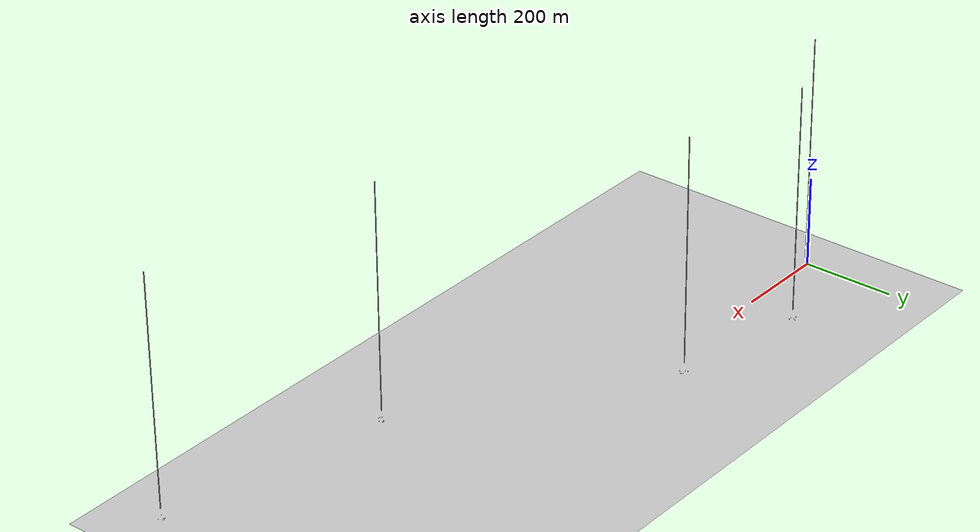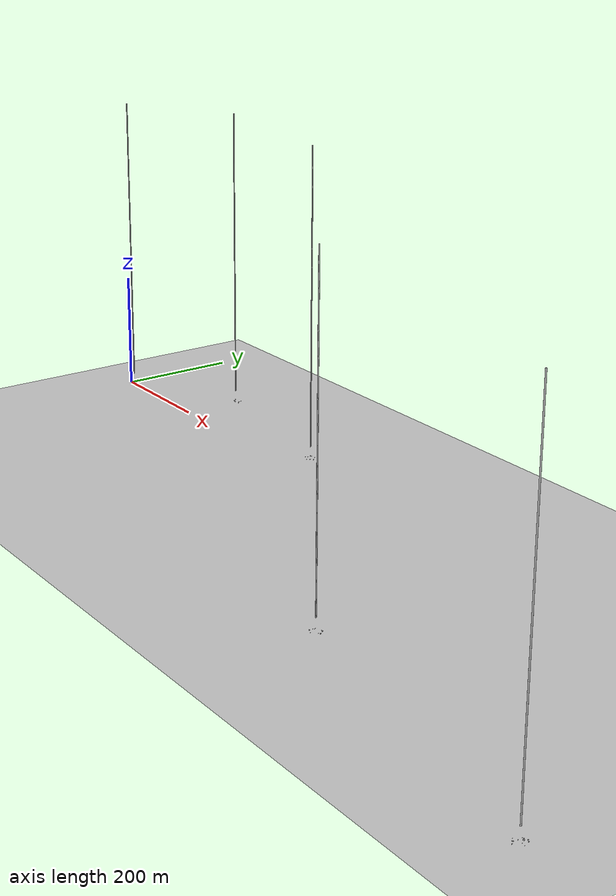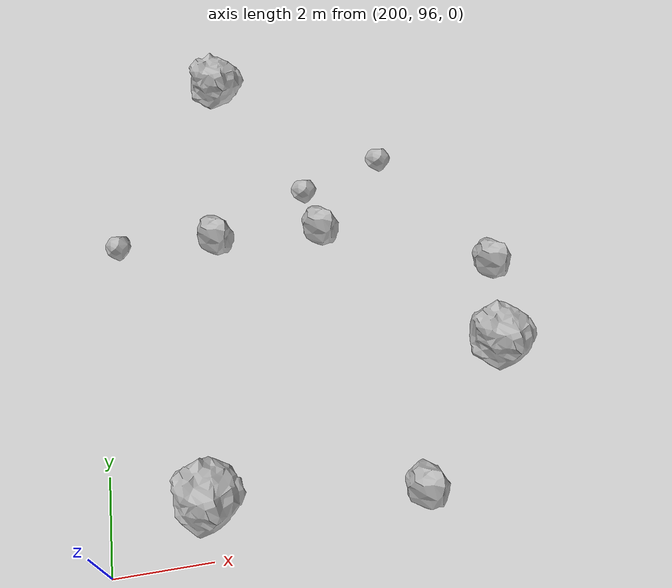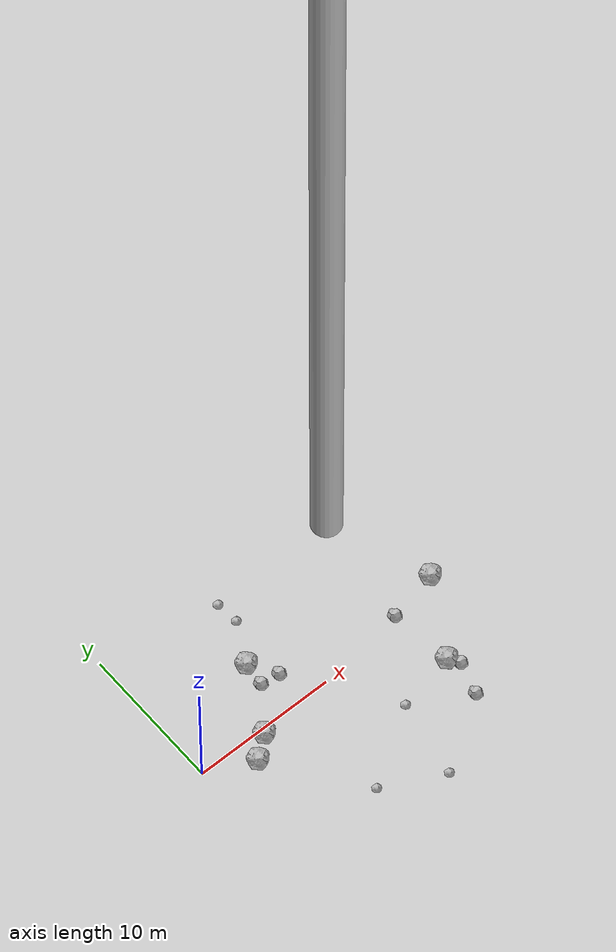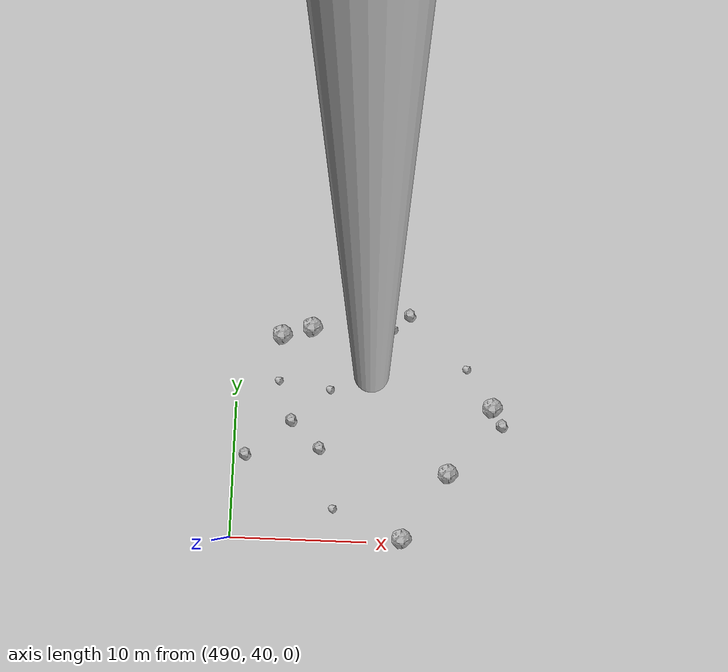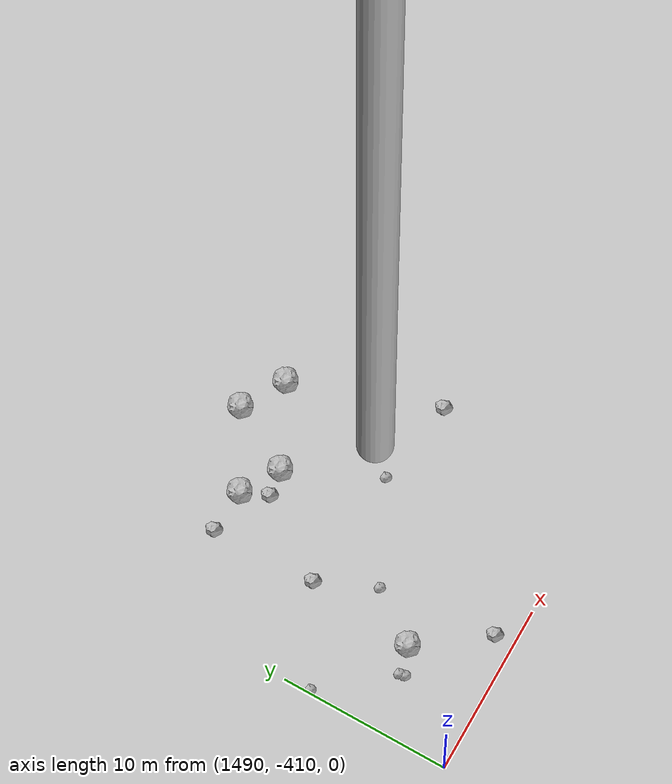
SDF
<?xml version="1.0" ?>
<sdf version="1.6">
  <world name="default">

    <include>
      <uri>model://custom_ground</uri>
    </include>

    <include>
      <uri>model://sun</uri>
    </include>

    <spherical_coordinates>
      <surface_model>EARTH_WGS84</surface_model>
      <latitude_deg>38.161479</latitude_deg>
      <longitude_deg>-122.454630</longitude_deg>
      <elevation>488.0</elevation>
      <heading_deg>90</heading_deg>
    </spherical_coordinates>

    <model name="rock1_0_0">
      <include>
        <uri>model://rock1</uri>
        <pose>3.221514304480999 -1.6008151252990643 0.5 0 0 0</pose>
      </include>
    </model>
    <model name="rock1_0_1">
      <include>
        <uri>model://rock1</uri>
        <pose>6.944169874158687 4.016667058957488 0.5 0 0 0</pose>
      </include>
    </model>
    <model name="rock1_0_2">
      <include>
        <uri>model://rock1</uri>
        <pose>4.68929963518619 -0.44783143714005114 0.5 0 0 0</pose>
      </include>
    </model>
    <model name="rock1_0_3">
      <include>
        <uri>model://rock1</uri>
        <pose>16.746275591390674 -3.698104021300333 0.5 0 0 0</pose>
      </include>
    </model>
    <model name="rock1_0_4">
      <include>
        <uri>model://rock1</uri>
        <pose>19.81732396013678 1.470242124811561 0.5 0 0 0</pose>
      </include>
    </model>
    <model name="rock2_0_0">
      <include>
        <uri>model://rock2</uri>
        <pose>17.23859473762433 -4.386458951489609 0.3 0 0 0</pose>
      </include>
    </model>
    <model name="rock2_0_1">
      <include>
        <uri>model://rock2</uri>
        <pose>6.7578224565757665 2.449261875798264 0.3 0 0 0</pose>
      </include>
    </model>
    <model name="rock2_0_2">
      <include>
        <uri>model://rock2</uri>
        <pose>16.253683824812057 0.7765717530051024 0.3 0 0 0</pose>
      </include>
    </model>
    <model name="rock2_0_3">
      <include>
        <uri>model://rock2</uri>
        <pose>8.075843055685493 2.261391050328381 0.3 0 0 0</pose>
      </include>
    </model>
    <model name="rock2_0_4">
      <include>
        <uri>model://rock2</uri>
        <pose>16.55832042222935 -6.629193904564616 0.3 0 0 0</pose>
      </include>
    </model>
    <model name="rock3_0_0">
      <include>
        <uri>model://rock3</uri>
        <pose>12.683310248448318 -4.479705037905067 0.2 0 0 0</pose>
      </include>
    </model>
    <model name="rock3_0_1">
      <include>
        <uri>model://rock3</uri>
        <pose>7.547525739692523 -7.770375298016312 0.2 0 0 0</pose>
      </include>
    </model>
    <model name="rock3_0_2">
      <include>
        <uri>model://rock3</uri>
        <pose>8.281271755149405 8.462971870562551 0.2 0 0 0</pose>
      </include>
    </model>
    <model name="rock3_0_3">
      <include>
        <uri>model://rock3</uri>
        <pose>11.683583881065704 -9.827922944652448 0.2 0 0 0</pose>
      </include>
    </model>
    <model name="rock3_0_4">
      <include>
        <uri>model://rock3</uri>
        <pose>8.410177063246511 6.829949427643889 0.2 0 0 0</pose>
      </include>
    </model>
    <model name="rock1_1_0">
      <include>
        <uri>model://rock1</uri>
        <pose>208.90210218514548 99.67950377152792 0.5 0 0 0</pose>
      </include>
    </model>
    <model name="rock1_1_1">
      <include>
        <uri>model://rock1</uri>
        <pose>191.75683864188474 104.22931853378822 0.5 0 0 0</pose>
      </include>
    </model>
    <model name="rock1_1_2">
      <include>
        <uri>model://rock1</uri>
        <pose>192.91352100408662 103.78154717778408 0.5 0 0 0</pose>
      </include>
    </model>
    <model name="rock1_1_3">
      <include>
        <uri>model://rock1</uri>
        <pose>202.04230924504225 97.17505322376087 0.5 0 0 0</pose>
      </include>
    </model>
    <model name="rock1_1_4">
      <include>
        <uri>model://rock1</uri>
        <pose>203.29261447808688 108.4185577845464 0.5 0 0 0</pose>
      </include>
    </model>
    <model name="rock2_1_0">
      <include>
        <uri>model://rock2</uri>
        <pose>205.36710304293234 103.41933139837784 0.3 0 0 0</pose>
      </include>
    </model>
    <model name="rock2_1_1">
      <include>
        <uri>model://rock2</uri>
        <pose>209.3030597103115 101.82121363583677 0.3 0 0 0</pose>
      </include>
    </model>
    <model name="rock2_1_2">
      <include>
        <uri>model://rock2</uri>
        <pose>206.4621879515016 96.75397753084772 0.3 0 0 0</pose>
      </include>
    </model>
    <model name="rock2_1_3">
      <include>
        <uri>model://rock2</uri>
        <pose>193.99973172613338 100.03178545399153 0.3 0 0 0</pose>
      </include>
    </model>
    <model name="rock2_1_4">
      <include>
        <uri>model://rock2</uri>
        <pose>202.76501382000038 103.54402648439643 0.3 0 0 0</pose>
      </include>
    </model>
    <model name="rock3_1_0">
      <include>
        <uri>model://rock3</uri>
        <pose>205.13176167463268 104.5684724720555 0.2 0 0 0</pose>
      </include>
    </model>
    <model name="rock3_1_1">
      <include>
        <uri>model://rock3</uri>
        <pose>200.36784355132437 103.56791598047178 0.2 0 0 0</pose>
      </include>
    </model>
    <model name="rock3_1_2">
      <include>
        <uri>model://rock3</uri>
        <pose>207.22123674396633 105.27801945167914 0.2 0 0 0</pose>
      </include>
    </model>
    <model name="rock3_1_3">
      <include>
        <uri>model://rock3</uri>
        <pose>197.35640426128052 99.66259521665201 0.2 0 0 0</pose>
      </include>
    </model>
    <model name="rock3_1_4">
      <include>
        <uri>model://rock3</uri>
        <pose>195.30476879686003 92.107025095293 0.2 0 0 0</pose>
      </include>
    </model>
    <model name="rock1_2_0">
      <include>
        <uri>model://rock1</uri>
        <pose>493.24830240756023 55.0760851736049 0.5 0 0 0</pose>
      </include>
    </model>
    <model name="rock1_2_1">
      <include>
        <uri>model://rock1</uri>
        <pose>508.93141443387213 50.184519405190464 0.5 0 0 0</pose>
      </include>
    </model>
    <model name="rock1_2_2">
      <include>
        <uri>model://rock1</uri>
        <pose>495.44818425649873 55.723368192782104 0.5 0 0 0</pose>
      </include>
    </model>
    <model name="rock1_2_3">
      <include>
        <uri>model://rock1</uri>
        <pose>502.5625575852621 40.38418599943839 0.5 0 0 0</pose>
      </include>
    </model>
    <model name="rock1_2_4">
      <include>
        <uri>model://rock1</uri>
        <pose>505.80375038248405 45.23049050806412 0.5 0 0 0</pose>
      </include>
    </model>
    <model name="rock2_2_0">
      <include>
        <uri>model://rock2</uri>
        <pose>494.12737165796494 48.766330396868135 0.3 0 0 0</pose>
      </include>
    </model>
    <model name="rock2_2_1">
      <include>
        <uri>model://rock2</uri>
        <pose>496.2583687872052 46.7858669299603 0.3 0 0 0</pose>
      </include>
    </model>
    <model name="rock2_2_2">
      <include>
        <uri>model://rock2</uri>
        <pose>502.6175224230848 56.89031801070044 0.3 0 0 0</pose>
      </include>
    </model>
    <model name="rock2_2_3">
      <include>
        <uri>model://rock2</uri>
        <pose>490.83668121847654 46.16126186686073 0.3 0 0 0</pose>
      </include>
    </model>
    <model name="rock2_2_4">
      <include>
        <uri>model://rock2</uri>
        <pose>509.667916604864 48.909204669585705 0.3 0 0 0</pose>
      </include>
    </model>
    <model name="rock3_2_0">
      <include>
        <uri>model://rock3</uri>
        <pose>493.0916210650645 51.64881830442461 0.2 0 0 0</pose>
      </include>
    </model>
    <model name="rock3_2_1">
      <include>
        <uri>model://rock3</uri>
        <pose>506.95404179979494 52.98111738909772 0.2 0 0 0</pose>
      </include>
    </model>
    <model name="rock3_2_2">
      <include>
        <uri>model://rock3</uri>
        <pose>501.4620198880636 55.744893083129604 0.2 0 0 0</pose>
      </include>
    </model>
    <model name="rock3_2_3">
      <include>
        <uri>model://rock3</uri>
        <pose>497.4222232722671 42.343567200018555 0.2 0 0 0</pose>
      </include>
    </model>
    <model name="rock3_2_4">
      <include>
        <uri>model://rock3</uri>
        <pose>496.9094701180908 51.10979144200237 0.2 0 0 0</pose>
      </include>
    </model>
    <model name="rock1_3_0">
      <include>
        <uri>model://rock1</uri>
        <pose>1002.4873879699461 -292.85287714723273 0.5 0 0 0</pose>
      </include>
    </model>
    <model name="rock1_3_1">
      <include>
        <uri>model://rock1</uri>
        <pose>1005.0247974324909 -293.0083618403119 0.5 0 0 0</pose>
      </include>
    </model>
    <model name="rock1_3_2">
      <include>
        <uri>model://rock1</uri>
        <pose>1009.3620154605402 -299.1106425683037 0.5 0 0 0</pose>
      </include>
    </model>
    <model name="rock1_3_3">
      <include>
        <uri>model://rock1</uri>
        <pose>992.7824275490607 -305.21363923082777 0.5 0 0 0</pose>
      </include>
    </model>
    <model name="rock1_3_4">
      <include>
        <uri>model://rock1</uri>
        <pose>1007.0364618281034 -301.06828607836877 0.5 0 0 0</pose>
      </include>
    </model>
    <model name="rock2_3_0">
      <include>
        <uri>model://rock2</uri>
        <pose>992.9966962670675 -295.36945190342766 0.3 0 0 0</pose>
      </include>
    </model>
    <model name="rock2_3_1">
      <include>
        <uri>model://rock2</uri>
        <pose>1006.5456616029229 -300.6521520654004 0.3 0 0 0</pose>
      </include>
    </model>
    <model name="rock2_3_2">
      <include>
        <uri>model://rock2</uri>
        <pose>994.3568827780939 -297.7685249303032 0.3 0 0 0</pose>
      </include>
    </model>
    <model name="rock2_3_3">
      <include>
        <uri>model://rock2</uri>
        <pose>992.2693284518381 -298.84535057047316 0.3 0 0 0</pose>
      </include>
    </model>
    <model name="rock2_3_4">
      <include>
        <uri>model://rock2</uri>
        <pose>999.5007828162559 -308.657894650893 0.3 0 0 0</pose>
      </include>
    </model>
    <model name="rock3_3_0">
      <include>
        <uri>model://rock3</uri>
        <pose>1006.054290345507 -300.64107914877246 0.2 0 0 0</pose>
      </include>
    </model>
    <model name="rock3_3_1">
      <include>
        <uri>model://rock3</uri>
        <pose>1000.1967009387082 -295.79676834911044 0.2 0 0 0</pose>
      </include>
    </model>
    <model name="rock3_3_2">
      <include>
        <uri>model://rock3</uri>
        <pose>1001.8454700710608 -308.6543101166832 0.2 0 0 0</pose>
      </include>
    </model>
    <model name="rock3_3_3">
      <include>
        <uri>model://rock3</uri>
        <pose>999.4748342335117 -295.06016533443824 0.2 0 0 0</pose>
      </include>
    </model>
    <model name="rock3_3_4">
      <include>
        <uri>model://rock3</uri>
        <pose>996.3221620970581 -308.39618553650746 0.2 0 0 0</pose>
      </include>
    </model>
    <model name="rock1_4_0">
      <include>
        <uri>model://rock1</uri>
        <pose>1495.0209030132432 -404.9155947446344 0.5 0 0 0</pose>
      </include>
    </model>
    <model name="rock1_4_1">
      <include>
        <uri>model://rock1</uri>
        <pose>1504.7044722704704 -391.7551900296237 0.5 0 0 0</pose>
      </include>
    </model>
    <model name="rock1_4_2">
      <include>
        <uri>model://rock1</uri>
        <pose>1498.0105499232538 -392.63452250437905 0.5 0 0 0</pose>
      </include>
    </model>
    <model name="rock1_4_3">
      <include>
        <uri>model://rock1</uri>
        <pose>1500.2079885747746 -393.95653693009274 0.5 0 0 0</pose>
      </include>
    </model>
    <model name="rock1_4_4">
      <include>
        <uri>model://rock1</uri>
        <pose>1502.233003212031 -390.29329333790696 0.5 0 0 0</pose>
      </include>
    </model>
    <model name="rock2_4_0">
      <include>
        <uri>model://rock2</uri>
        <pose>1498.6237777454462 -394.14865578855216 0.3 0 0 0</pose>
      </include>
    </model>
    <model name="rock2_4_1">
      <include>
        <uri>model://rock2</uri>
        <pose>1497.8528172799076 -408.8000672839403 0.3 0 0 0</pose>
      </include>
    </model>
    <model name="rock2_4_2">
      <include>
        <uri>model://rock2</uri>
        <pose>1495.5693871417266 -398.603613129694 0.3 0 0 0</pose>
      </include>
    </model>
    <model name="rock2_4_3">
      <include>
        <uri>model://rock2</uri>
        <pose>1507.6545648654408 -400.1139708707563 0.3 0 0 0</pose>
      </include>
    </model>
    <model name="rock2_4_4">
      <include>
        <uri>model://rock2</uri>
        <pose>1495.4294510502114 -392.4403334524705 0.3 0 0 0</pose>
      </include>
    </model>
    <model name="rock3_4_0">
      <include>
        <uri>model://rock3</uri>
        <pose>1497.0267217893347 -402.03050261559184 0.2 0 0 0</pose>
      </include>
    </model>
    <model name="rock3_4_1">
      <include>
        <uri>model://rock3</uri>
        <pose>1490.1834964705579 -401.50528264621977 0.2 0 0 0</pose>
      </include>
    </model>
    <model name="rock3_4_2">
      <include>
        <uri>model://rock3</uri>
        <pose>1493.3468165624654 -405.3251821020702 0.2 0 0 0</pose>
      </include>
    </model>
    <model name="rock3_4_3">
      <include>
        <uri>model://rock3</uri>
        <pose>1493.4124410821132 -405.6490433324655 0.2 0 0 0</pose>
      </include>
    </model>
    <model name="rock3_4_4">
      <include>
        <uri>model://rock3</uri>
        <pose>1502.6171119906533 -399.28477294563857 0.2 0 0 0</pose>
      </include>
    </model>

    <model name="cylinder_1">
      <static>true</static>
      <link name="link">
        <visual name="visual">
          <geometry>
            <cylinder>
              <radius>1</radius>
              <length>500</length>
            </cylinder>
          </geometry>
        </visual>
      </link>
      <pose>10 0 270 0 0 0</pose>
    </model>

    <model name="cylinder_2">
      <static>true</static>
      <link name="link">
        <visual name="visual">
          <geometry>
            <cylinder>
              <radius>1</radius>
              <length>500</length>
            </cylinder>
          </geometry>
        </visual>
      </link>
      <pose>200 100 270 0 0 0</pose>
    </model>

    <model name="cylinder_3">
      <static>true</static>
      <link name="link">
        <visual name="visual">
          <geometry>
            <cylinder>
              <radius>1</radius>
              <length>500</length>
            </cylinder>
          </geometry>
        </visual>
      </link>
      <pose>500 50 270 0 0 0</pose>
    </model>

    <model name="cylinder_4">
      <static>true</static>
      <link name="link">
        <visual name="visual">
          <geometry>
            <cylinder>
              <radius>1</radius>
              <length>500</length>
            </cylinder>
          </geometry>
        </visual>
      </link>
      <pose>1000 -300 270 0 0 0</pose>
    </model>

    <model name="cylinder_5">
      <static>true</static>
      <link name="link">
        <visual name="visual">
          <geometry>
            <cylinder>
              <radius>1</radius>
              <length>500</length>
            </cylinder>
          </geometry>
        </visual>
      </link>
      <pose>1500 -400 270 0 0 0</pose>
    </model>

  </world>
</sdf>

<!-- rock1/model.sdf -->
<sdf version="1.6">
  <model name="rock1">
    <static>true</static> <!-- Set to true if the model should not move -->
    <pose>0 0 0 0 0 0</pose>

    <!--z offset is 0.5 for full scale-->

    <link name="link">
      <collision name="rock1_collision">
        <geometry>
          <mesh>
            <uri>model://meshes/rock1.dae</uri>
          </mesh>
        </geometry>
      </collision>
      <visual name="rock1_visual">
        <geometry>
          <mesh>
            <uri>model://meshes/rock1.dae</uri>
          </mesh>
        </geometry>
        <material>
          <script>
            <uri>model://materials/scripts/sand_pebbles.material</uri>
            <name>custom_ground/Image</name>
          </script>
        </material>
      </visual>
    </link>
  </model>
</sdf>

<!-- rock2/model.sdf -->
<sdf version="1.6">
  <model name="rock2">
    <static>true</static> <!-- Set to true if the model should not move -->
    <pose>0 0 0 0 0 0</pose>

    <!--z offset is 0.3 for full scale-->

    <link name="link">
      <collision name="rock2_collision">
        <geometry>
          <mesh>
            <uri>model://meshes/rock2.dae</uri>
          </mesh>
        </geometry>
      </collision>
      <visual name="rock2_visual">
        <geometry>
          <mesh>
            <uri>model://meshes/rock2.dae</uri>
          </mesh>
        </geometry>
        <material>
          <script>
            <uri>model://materials/scripts/sand_pebbles.material</uri>
            <name>custom_ground/Image</name>
          </script>
        </material>
      </visual>
    </link>
  </model>
</sdf>

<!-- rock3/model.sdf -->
<sdf version="1.6">
  <model name="rock3">
    <static>true</static> <!-- Set to true if the model should not move -->
    <pose>0 0 0 0 0 0</pose>

    <!--z offset is 0.2 for full scale-->

    <link name="link">
      <collision name="rock3_collision">
        <geometry>
          <mesh>
            <uri>model://meshes/rock3.dae</uri>
          </mesh>
        </geometry>
      </collision>
      <visual name="rock3_visual">
        <geometry>
          <mesh>
            <uri>model://meshes/rock3.dae</uri>
          </mesh>
        </geometry>
        <material>
          <script>
            <uri>model://materials/scripts/sand_pebbles.material</uri>
            <name>custom_ground/Image</name>
          </script>
        </material>
      </visual>
    </link>
  </model>
</sdf>

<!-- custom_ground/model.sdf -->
<sdf version="1.6">
  <model name="custom_ground">
    <static>true</static> <!-- Ground is static and immovable -->
    <link name="ground_link">
      <pose>240 0 0 0 0 0</pose> <!-- Position and orientation relative to the world -->
      <!-- Visual Representation -->
      <visual name="ground_visual">
        <geometry>
          <plane>
            <normal>0 0 1</normal> <!-- Upward facing plane -->
            <size>500 500</size> <!-- Size of the plane -->
          </plane>
        </geometry>
        <material>
          <script>
            <uri>model://materials/scripts/sand_pebbles.material</uri>
            <name>custom_ground/Image</name>
          </script>
        </material>
      </visual>

      <!-- Collision Representation -->
      <collision name="ground_collision">
        <geometry>
          <plane>
            <normal>0 0 1</normal>
            <size>100 100</size>
          </plane>
        </geometry>
      </collision>

    </link>
  </model>
</sdf>
